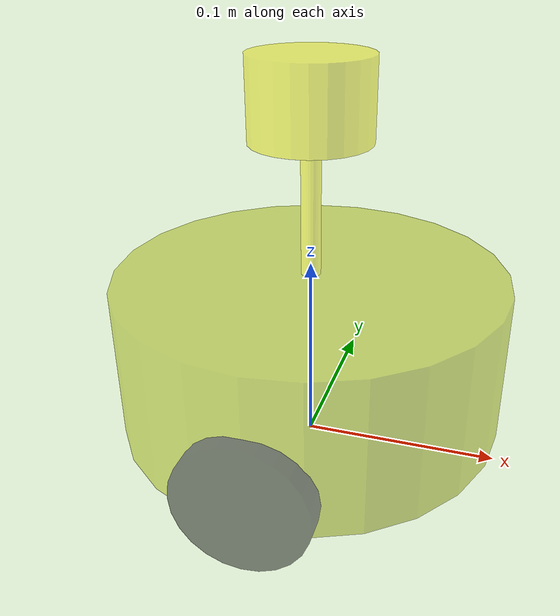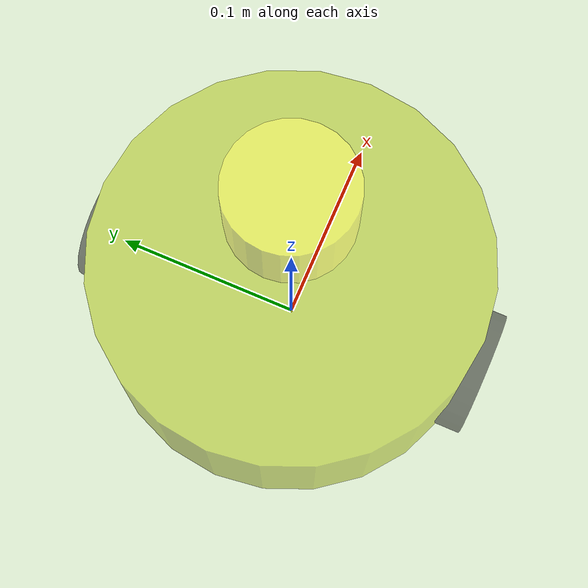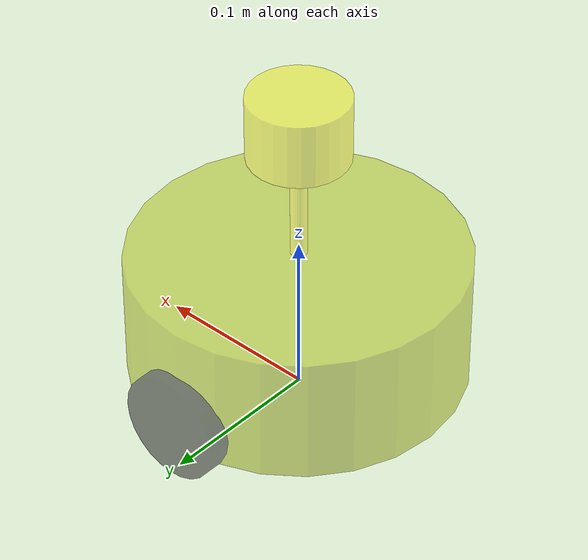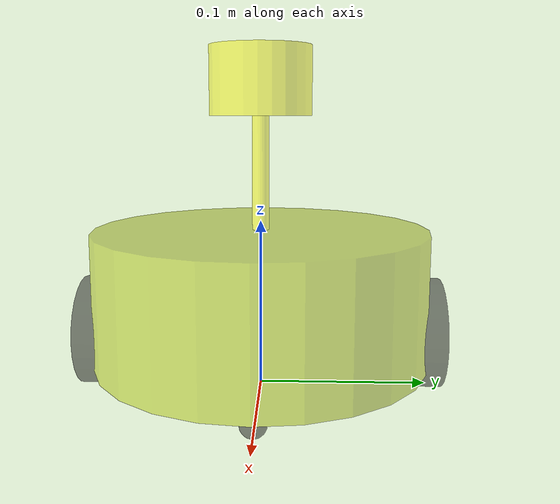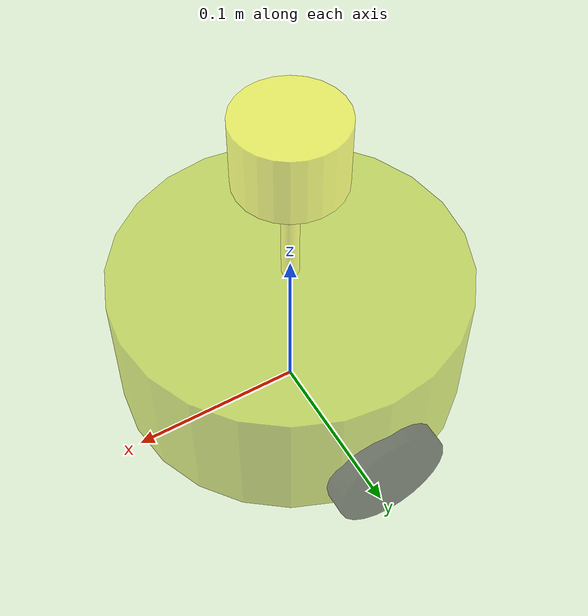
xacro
<robot name="mycar" xmlns:xacro="http://wiki.ros.org/xacro">

<!-- 该文件的作用：用于配置小车的驱动关系和传感器的参数 -->

 <!--包含惯性矩阵函数文件路径-->
 <xacro:include filename="$(find ros_06_urdf_rviz_gazebo)/urdf/head.xacro"/>

<!--包含底盘、摄像头、雷达的 xacro 文件-->

 <xacro:include filename="demo05_car_base.urdf.xacro"/>

 <xacro:include filename="demo07_car_laser.urdf.xacro"/>

 <!-- 运动控制文件：主要用于配置小车的驱动轮 -->
 <xacro:include filename="gazebo/move.xacro"/>

 <!-- 雷达文件：雷达的参数配置 -->
 <xacro:include filename="gazebo/laser.xacro"/>

 <!-- 摄像头文件：摄像头参数的配置 -->

 <!-- 深度相机的 xacro 文件 -->

</robot>

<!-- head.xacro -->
<robot name="mycar" xmlns:xacro="http://wiki.ros.org/xacro">

<!-- Macro for inertia matrix -->

    <xacro:macro name="sphere_inertial_matrix" params="m r">
        <inertial>
            <mass value="${m}" />
            <inertia ixx="${2*m*r*r/5}" ixy="0" ixz="0"
                iyy="${2*m*r*r/5}" iyz="0"
                izz="${2*m*r*r/5}" />
        </inertial>
    </xacro:macro>

    <xacro:macro name="cylinder_inertial_matrix" params="m r h">
        <inertial>
            <mass value="${m}" />
            <inertia ixx="${m*(3*r*r+h*h)/12}" ixy = "0" ixz = "0"
                iyy="${m*(3*r*r+h*h)/12}" iyz = "0"
                izz="${m*r*r/2}" />
        </inertial>
    </xacro:macro>

    <xacro:macro name="Box_inertial_matrix" params="m l w h">
       <inertial>
               <mass value="${m}" />
               <inertia ixx="${m*(h*h + l*l)/12}" ixy = "0" ixz = "0"
                   iyy="${m*(w*w + l*l)/12}" iyz= "0"
                   izz="${m*(w*w + h*h)/12}" />
       </inertial>
   </xacro:macro>

</robot>

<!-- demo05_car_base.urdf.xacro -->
<robot name="mycar" xmlns:xacro="http://www.ros.org/wiki/xacro">

<!--底盘参数-->
 <xacro:property name="foot_print_radius" value="0.001"/>
 <xacro:property name="base_link_radius" value="0.1"/>
 <xacro:property name="base_link_length" value="0.08"/>
 <xacro:property name="base_mass" value="2"/>
 <xacro:property name="base_link_lidi" value="0.015"/>
 <xacro:property name="base_link_z" value="${base_link_length/2+base_link_lidi}"/>

<!--驱动轮参数-->
 <xacro:property name="wheel_radius" value="0.0325"/>
 <xacro:property name="wheel_length" value="0.015"/>
 <xacro:property name="Pi" value="3.1415927"/>
 <xacro:property name="wheel_link_z" value="${-(base_link_length/2+base_link_lidi-wheel_radius)}"/>
 <xacro:property name="wheel_mass" value="0.05"/>

<!--万向轮参数-->
 <xacro:property name="small_wheel_radius" value="0.0075"/>
 <!-- Z的偏移量 = 车体高度/2 + 离地间距 - 万向轮半径-->
 <xacro:property name="small_wheel_z" value="${-(base_link_length/2+base_link_lidi-small_wheel_radius)}"/>
 <xacro:property name="small_wheel_mass" value="0.01"/>

  <!--
  添加一个尺寸极小的link，再去关联初始link和base_link，
  关节的高度刚好和bese_link下沉的高度一致（半个底盘高度）
  -->
<link name="base_footprint">
    <visual>
       <geometry>
          <sphere radius="${foot_print_radius}"/>
       </geometry>
    </visual>
    <!-- 不能配置，否则小车不能运动 -->
</link>

<!--添加底盘-->
<!--
    形状：圆柱
    半径:10cm
    高度：8cm
    离地间距：1.5cm
-->
<link name="base_link">
    <visual>
       <geometry>
          <cylinder radius="${base_link_radius}" length="${base_link_length}"/>
       </geometry>
       <origin xyz="0 0 0" rpy="0 0 0"/>
       <material name="baselink_color">
           <color rgba="0.7 0.8 0 0.5"/>
       </material>
    </visual>

    <collision>
    <geometry>
          <cylinder radius="${base_link_radius}" length="${base_link_length}"/>
       </geometry>
       <origin xyz="0 0 0" rpy="0 0 0"/>

    </collision>
    <!--调用惯性矩阵函数-->
    <xacro:cylinder_inertial_matrix m="${base_mass}" r="${base_link_radius}" h="${base_link_length}"/>

</link>

<gazebo reference="base_link">jiang
   <material>Gazebo/Blue</material>
</gazebo>

 <!--添加一个关节关联 base_link 和 base_footprint -->
<joint name="base_link2base_footprint" type="fixed">
     <!--父级link-->
     <parent link="base_footprint"/>
     <!--子级link-->
     <child link="base_link"/>
     <!--设置偏移量:车体高度/2 + 离地间距-->
     <origin xyz="0 0 ${base_link_z}" rpy="0 0 0"/>
</joint>

<!--添加驱动轮-->
<!--
    形状：圆柱
    半径:3.25cm
    宽度：1.5cm
    wheel_name:left or right
    flag:1 or -1
-->
<xacro:macro name="wheel_func" params="wheel_name flag">

<link name="${wheel_name}_wheel">
    <visual>
       <geometry>
          <cylinder radius="${wheel_radius}" length="${wheel_length}"/>
       </geometry>
       <origin xyz="0 0 0" rpy="${Pi/2} 0 0"/>
       <material name="wheel_color">
           <color rgba="0 0 0 0.5"/>
       </material>
    </visual>
    <collision>

    <geometry>
          <cylinder radius="${wheel_radius}" length="${wheel_length}"/>
       </geometry>
       <origin xyz="0 0 0" rpy="${Pi/2} 0 0"/>

    </collision>
    <!--调用惯性矩阵函数-->
    <xacro:cylinder_inertial_matrix  m="${wheel_mass}" r="${wheel_radius}" h="${wheel_length}"/>
</link>

<gazebo reference="${wheel_name}_wheel">
   <material>Gazebo/Black</material>
</gazebo>

<!--添加一个关节关联 base_link 和 ${wheel_name}_wheel -->
<joint name="${wheel_name}_wheel2base_link" type="continuous">
     <!--父级link-->
     <parent link="base_link"/>
     <!--子级link-->
     <child link="${wheel_name}_wheel"/>
     <!--设置偏移量-->
     <!--
    x：无偏移
    y:半径0.1m
    z：1.5cm
    -->
     <origin xyz="0 ${0.1*flag} ${wheel_link_z}" rpy="0 0 0"/>
     <axis xyz="0 1 0"/>
</joint>
</xacro:macro>

<!-- 实例化 -->
<!--调用 xacro宏 生成左轮和右轮-->
<xacro:wheel_func wheel_name="left" flag="1"/>
<xacro:wheel_func wheel_name="right" flag="-1"/>

<xacro:macro name="small_wheel_func" params="small_wheel_name flag1">
<!--添加万向轮-->
<!--
    形状：球体
    半径:0.0075m
-->
<link name="${small_wheel_name}_wheel">
    <visual>
       <geometry>
          <sphere radius="${small_wheel_radius}"/>
       </geometry>
       <origin xyz="0 0 0" rpy="0 0 0"/>
       <material name="wheel_color">
           <color rgba="0 0 0 0.5"/>
       </material>
    </visual>
    <collision>

    <geometry>
          <sphere radius="${small_wheel_radius}"/>
    </geometry>
       <origin xyz="0 0 0" rpy="0 0 0"/>

    </collision>
    <!--调用惯性矩阵函数-->
    <xacro:sphere_inertial_matrix  m="${small_wheel_mass}" r="${small_wheel_radius}"/>

</link>

<gazebo reference="${small_wheel_name}_wheel">
   <material>Gazebo/Yellow</material>
</gazebo>

<!--添加一个关节关联 base_link 和 ${small_wheel_name}_wheel -->
<joint name="${small_wheel_name}_wheel2base_link" type="continuous">
     <!--父级link-->
     <parent link="base_link"/>
     <!--子级link-->
     <child link="${small_wheel_name}_wheel"/>
     <!--设置偏移量-->
     <!--
    x：无偏移
    y:半径0.1m
    z：1.5cm
    -->
     <origin xyz="${0.08*flag1} 0 ${small_wheel_z}" rpy="0 0 0"/>
     <axis xyz="1 1 1"/>
</joint>

</xacro:macro>

<!--调用 xacro宏 生成前轮和后轮-->
<xacro:small_wheel_func small_wheel_name="fornt" flag1="1"/>
<xacro:small_wheel_func small_wheel_name="back" flag1="-1"/>

</robot>

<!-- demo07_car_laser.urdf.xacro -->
<robot name="mycar" xmlns:xacro="http://www.ros.org/wiki/xacro">

    <!--添加雷达部件-->
<!--
    雷达参数（圆柱）：
    高度:0.04
    半径:0.03
    关节属性：x y z 偏移量(0 0 0)
-->

<!--雷达参数-->
 <xacro:property name="laser_radius" value="0.03"/> <!--半径-->
 <xacro:property name="laser_height" value="0.04"/> <!--高度-->
 <xacro:property name="laser_z" value="0.04"/> <!--离地高度-->
 <xacro:property name="laser_mass" value="0.4"/> <!--重量-->

<!--雷达连杆参数-->
 <xacro:property name="laser_support_radius" value="0.005"/> <!--支柱半径-->
 <xacro:property name="laser_support_height" value="0.075"/> <!--支柱高度-->
 <xacro:property name="laser_support_mass" value="0.1"/> <!--支柱高度-->

 <!--关节属性偏移量-->
 <xacro:property name="laser_link_x" value="0"/>
 <xacro:property name="laser_link_y" value="0"/>
 <xacro:property name="laser_link_base_link_z" value="${base_link_length/2 + laser_support_height/2-0.004}"/>
 <xacro:property name="laser_link_car_laser_z" value="${laser_support_height/2 + laser_height/2-0.004}"/>

<link name="car_laser">
    <visual>
       <geometry>
          <cylinder radius="${laser_radius}" length="${laser_height}"/>
       </geometry>
       <origin xyz="0 0 0" rpy="0 0 0"/>
       <material name="wheel_color">
           <color rgba="1 1 0 0.5"/>
       </material>
    </visual>

    <collision>
    <geometry>
          <cylinder radius="${laser_radius}" length="${laser_height}"/>
       </geometry>
       <origin xyz="0 0 0" rpy="0 0 0"/>
    </collision>
    <!--调用惯性矩阵函数-->
    <xacro:cylinder_inertial_matrix m="${laser_mass}" r="${laser_radius}" h="${laser_height}"/>

</link>

<gazebo reference="car_laser">
   <material>Gazebo/Black</material>
</gazebo>

<!--添加雷达支架部件-->
<!--
    雷达支架参数（圆柱）：
    高度:0.2
    半径:0.01
    关节属性：x y z 偏移量(0 0 0.14)
-->
<link name="laser_support">
    <visual>
       <geometry>
          <cylinder radius="${laser_support_radius}" length="${laser_support_height}"/>
       </geometry>
       <origin xyz="0 0 0" rpy="0 0 0"/>
       <material name="wheel_color">
           <color rgba="1 1 0 0.5"/>
       </material>
    </visual>
    <collision>
       <geometry>
          <cylinder radius="${laser_support_radius}" length="${laser_support_height}"/>
       </geometry>
       <origin xyz="0 0 0" rpy="0 0 0"/>
    </collision>
    <!--调用惯性矩阵函数-->
    <xacro:cylinder_inertial_matrix m="${laser_support_mass}" r="${laser_support_radius}" h="${laser_support_height}"/>

</link>

<gazebo reference="laser_support">
   <material>Gazebo/Green</material>
</gazebo>

<!--添加一个关节关联 base_link 和 laser_support -->
<joint name="car_laser2base_link" type="fixed">
     <!--父级link-->
     <parent link="base_link"/>
     <!--子级link-->
     <child link="laser_support"/>
     <!--设置偏移量-->
     <origin xyz="${laser_link_x} ${laser_link_y} ${laser_link_base_link_z}" rpy="0 0 0"/>
     <axis xyz="0 0 0"/>
</joint>

<!--添加一个关节关联 car_laser 和 laser_support-->
<joint name="car_laser2laser_support" type="fixed">
     <!--父级link-->
     <parent link="laser_support"/>
     <!--子级link-->
     <child link="car_laser"/>
     <!--设置偏移量-->
     <origin xyz="${laser_link_x} ${laser_link_y} ${laser_link_car_laser_z}" rpy="0 0 0"/>
     <axis xyz="0 0 1"/>
</joint>

</robot>
